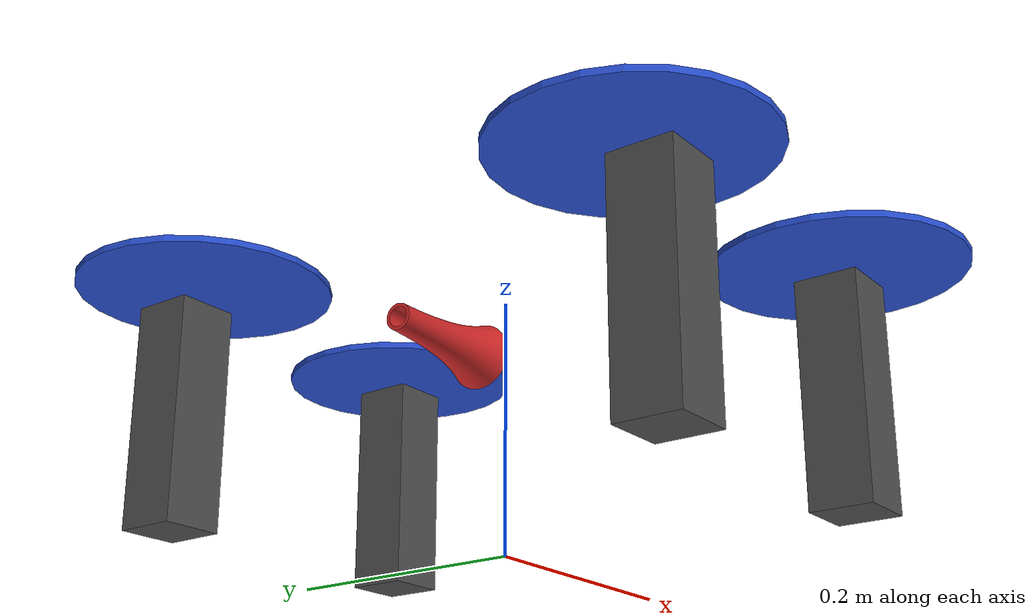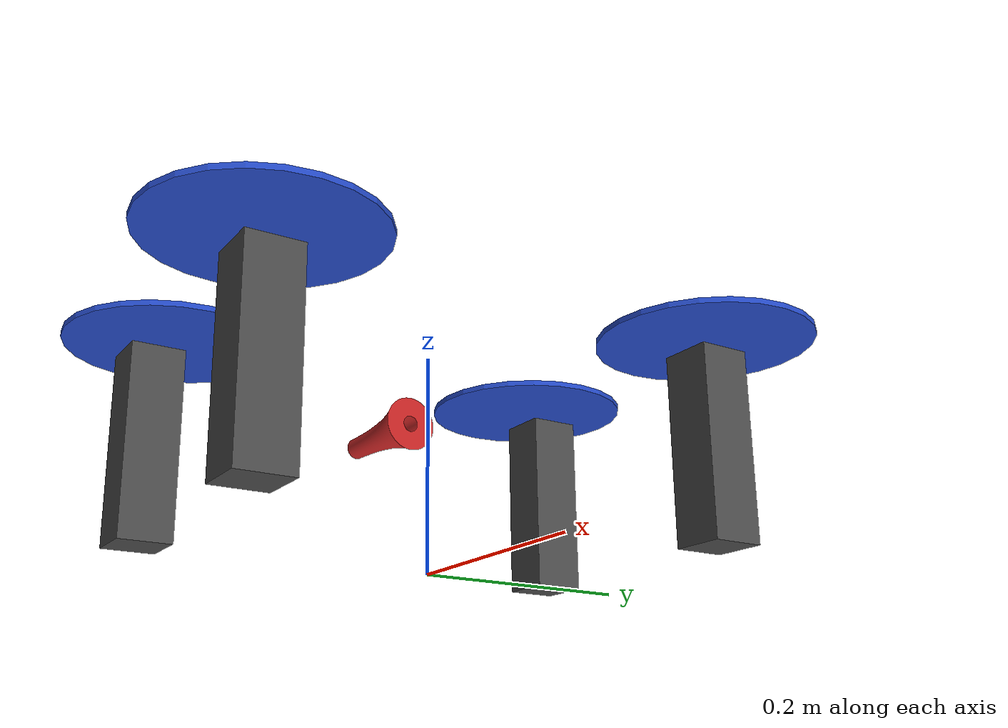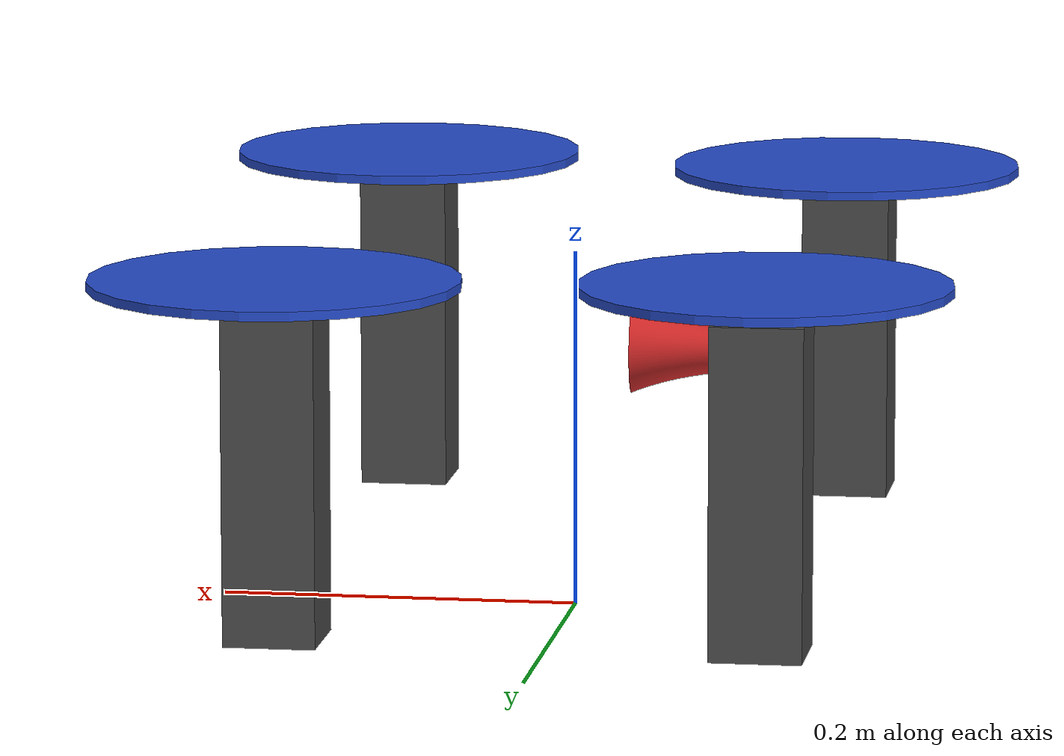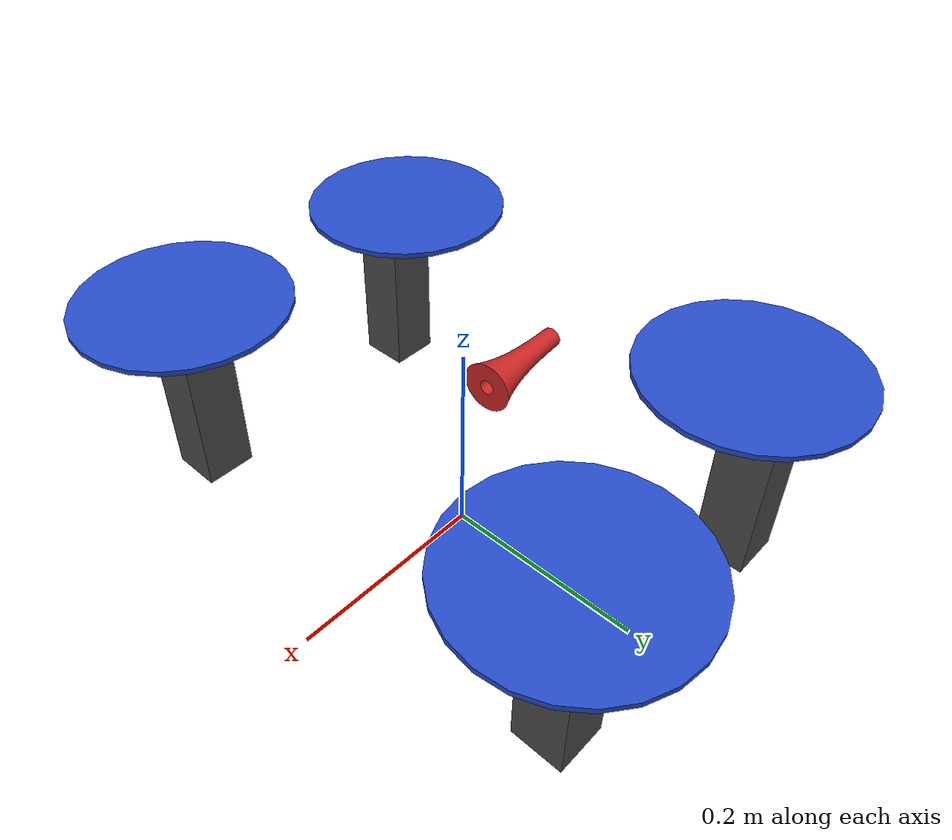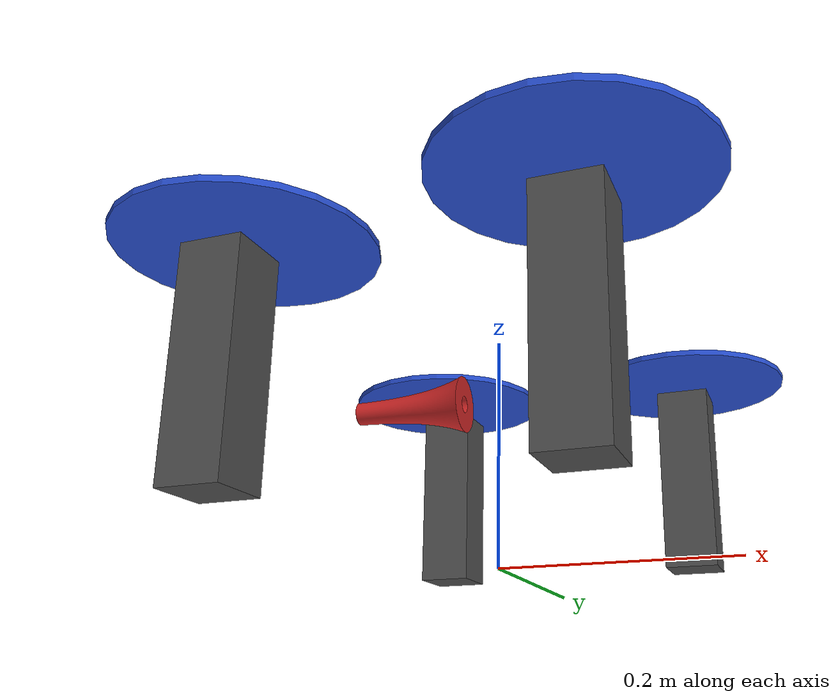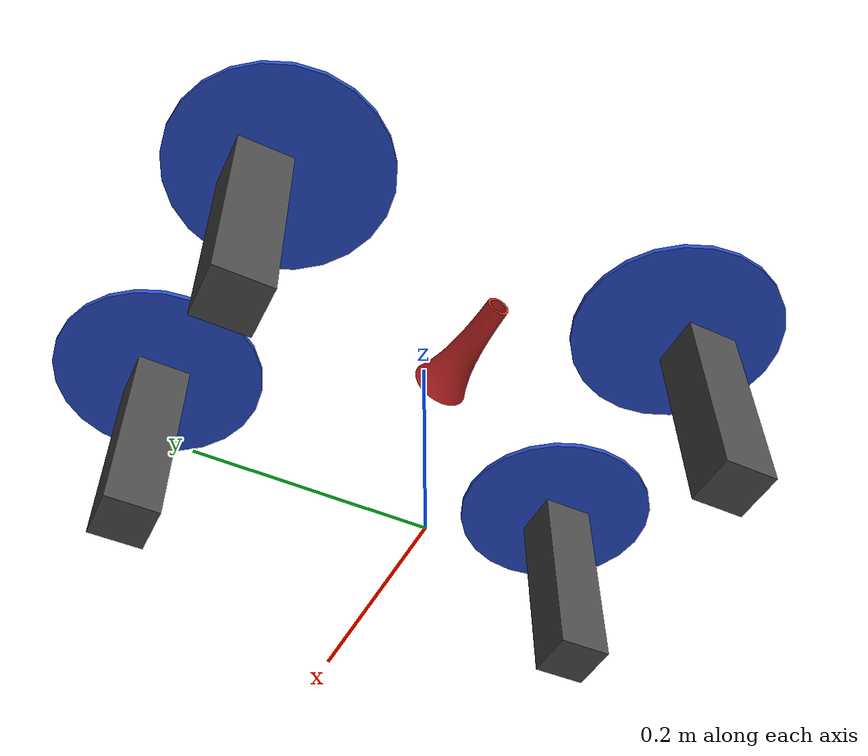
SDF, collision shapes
<?xml version='1.0'?>
<sdf version="1.6" >
  <model name="drone_spray">
    <include>
      <uri>model://iris_base</uri>
    </include>
    <!-- plugins -->

    <link name='link_0'>
      <inertial>
        <mass>0.0001</mass>
        <inertia>
          <ixx>0.0007</ixx>
          <ixy>0</ixy>
          <ixz>0</ixz>
          <iyy>0.0007</iyy>
          <iyz>0</iyz>
          <izz>0.0007</izz>
        </inertia>
        <pose>0 0 0 1.57 -0 0</pose>
      </inertial>
      <pose>-0.031929 -6.1e-05 0.146713 3.14126 -0.006965 1.61906</pose>
      <gravity>1</gravity>
      <self_collide>0</self_collide>
      <kinematic>0</kinematic>
      <enable_wind>0</enable_wind>
      <visual name='visual'>
        <pose>0 0 0.01 1.57 -0 0</pose>
        <geometry>
          <mesh>
            <uri>meshes/nozzle v2.stl</uri>
            <scale>0.001 0.001 0.001</scale>
          </mesh>
        </geometry>
        <material>
          <lighting>1</lighting>
          <script>
            <name>Gazebo/Red</name>
          </script>
        </material>
        <transparency>0</transparency>
        <cast_shadows>1</cast_shadows>
      </visual>
      <collision name='collision'>
        <laser_retro>0</laser_retro>
        <max_contacts>10</max_contacts>
        <pose>0 0 0 1.57 -0 0</pose>
        <geometry>
          <mesh>
            <uri>meshes/nozzle v2.stl</uri>
            <scale>0.001 0.001 0.001</scale>
          </mesh>
        </geometry>
        <surface>
          <friction>
            <ode>
              <mu>1</mu>
              <mu2>1</mu2>
              <fdir1>0 0 0</fdir1>
              <slip1>0</slip1>
              <slip2>0</slip2>
            </ode>
            <torsional>
              <coefficient>1</coefficient>
              <patch_radius>0</patch_radius>
              <surface_radius>0</surface_radius>
              <use_patch_radius>1</use_patch_radius>
              <ode>
                <slip>0</slip>
              </ode>
            </torsional>
          </friction>
          <bounce>
            <restitution_coefficient>0</restitution_coefficient>
            <threshold>1e+06</threshold>
          </bounce>
          <contact>
            <collide_without_contact>0</collide_without_contact>
            <collide_without_contact_bitmask>1</collide_without_contact_bitmask>
            <collide_bitmask>1</collide_bitmask>
            <ode>
              <soft_cfm>0</soft_cfm>
              <soft_erp>0.2</soft_erp>
              <kp>1e+13</kp>
              <kd>1</kd>
              <max_vel>0.01</max_vel>
              <min_depth>0</min_depth>
            </ode>
            <bullet>
              <split_impulse>1</split_impulse>
              <split_impulse_penetration_threshold>-0.01</split_impulse_penetration_threshold>
              <soft_cfm>0</soft_cfm>
              <soft_erp>0.2</soft_erp>
              <kp>1e+13</kp>
              <kd>1</kd>
            </bullet>
          </contact>
        </surface>
      </collision>
    </link>
    <joint name='base_link_joint_0' type='revolute'>
      <parent>iris::base_link</parent>
      <child>link_0</child>
      <axis>
        <xyz>0 0 1</xyz>
        <limit>
          <lower>0.0</lower>
          <upper>0.0</upper>
        </limit>
        <dynamics>
          <damping>1.0</damping>
        </dynamics>
        <use_parent_model_frame>1</use_parent_model_frame>
      </axis>
      <physics>
        <ode>
          <implicit_spring_damper>1</implicit_spring_damper>
        </ode>
      </physics>
    </joint>

    <plugin name="rotor_0_blade_1" filename="libLiftDragPlugin.so">
      <a0>0.3</a0>
      <alpha_stall>1.4</alpha_stall>
      <cla>4.2500</cla>
      <cda>0.10</cda>
      <cma>0.00</cma>
      <cla_stall>-0.025</cla_stall>
      <cda_stall>0.0</cda_stall>
      <cma_stall>0.0</cma_stall>
      <area>0.002</area>
      <air_density>1.2041</air_density>
      <cp>0.084 0 0</cp>
      <forward>0 1 0</forward>
      <upward>0 0 1</upward>
      <link_name>iris::rotor_0</link_name>
    </plugin>
    <plugin name="rotor_0_blade_2" filename="libLiftDragPlugin.so">
      <a0>0.3</a0>
      <alpha_stall>1.4</alpha_stall>
      <cla>4.2500</cla>
      <cda>0.10</cda>
      <cma>0.00</cma>
      <cla_stall>-0.025</cla_stall>
      <cda_stall>0.0</cda_stall>
      <cma_stall>0.0</cma_stall>
      <area>0.002</area>
      <air_density>1.2041</air_density>
      <cp>-0.084 0 0</cp>
      <forward>0 -1 0</forward>
      <upward>0 0 1</upward>
      <link_name>iris::rotor_0</link_name>
    </plugin>

    <plugin name="rotor_1_blade_1" filename="libLiftDragPlugin.so">
      <a0>0.3</a0>
      <alpha_stall>1.4</alpha_stall>
      <cla>4.2500</cla>
      <cda>0.10</cda>
      <cma>0.00</cma>
      <cla_stall>-0.025</cla_stall>
      <cda_stall>0.0</cda_stall>
      <cma_stall>0.0</cma_stall>
      <area>0.002</area>
      <air_density>1.2041</air_density>
      <cp>0.084 0 0</cp>
      <forward>0 1 0</forward>
      <upward>0 0 1</upward>
      <link_name>iris::rotor_1</link_name>
    </plugin>
    <plugin name="rotor_1_blade_2" filename="libLiftDragPlugin.so">
      <a0>0.3</a0>
      <alpha_stall>1.4</alpha_stall>
      <cla>4.2500</cla>
      <cda>0.10</cda>
      <cma>0.00</cma>
      <cla_stall>-0.025</cla_stall>
      <cda_stall>0.0</cda_stall>
      <cma_stall>0.0</cma_stall>
      <area>0.002</area>
      <air_density>1.2041</air_density>
      <cp>-0.084 0 0</cp>
      <forward>0 -1 0</forward>
      <upward>0 0 1</upward>
      <link_name>iris::rotor_1</link_name>
    </plugin>

    <plugin name="rotor_2_blade_1" filename="libLiftDragPlugin.so">
      <a0>0.3</a0>
      <alpha_stall>1.4</alpha_stall>
      <cla>4.2500</cla>
      <cda>0.10</cda>
      <cma>0.00</cma>
      <cla_stall>-0.025</cla_stall>
      <cda_stall>0.0</cda_stall>
      <cma_stall>0.0</cma_stall>
      <area>0.002</area>
      <air_density>1.2041</air_density>
      <cp>0.084 0 0</cp>
      <forward>0 -1 0</forward>
      <upward>0 0 1</upward>
      <link_name>iris::rotor_2</link_name>
    </plugin>
    <plugin name="rotor_2_blade_2" filename="libLiftDragPlugin.so">
      <a0>0.3</a0>
      <alpha_stall>1.4</alpha_stall>
      <cla>4.2500</cla>
      <cda>0.10</cda>
      <cma>0.00</cma>
      <cla_stall>-0.025</cla_stall>
      <cda_stall>0.0</cda_stall>
      <cma_stall>0.0</cma_stall>
      <area>0.002</area>
      <air_density>1.2041</air_density>
      <cp>-0.084 0 0</cp>
      <forward>0 1 0</forward>
      <upward>0 0 1</upward>
      <link_name>iris::rotor_2</link_name>
    </plugin>

    <plugin name="rotor_3_blade_1" filename="libLiftDragPlugin.so">
      <a0>0.3</a0>
      <alpha_stall>1.4</alpha_stall>
      <cla>4.2500</cla>
      <cda>0.10</cda>
      <cma>0.00</cma>
      <cla_stall>-0.025</cla_stall>
      <cda_stall>0.0</cda_stall>
      <cma_stall>0.0</cma_stall>
      <area>0.002</area>
      <air_density>1.2041</air_density>
      <cp>0.084 0 0</cp>
      <forward>0 -1 0</forward>
      <upward>0 0 1</upward>
      <link_name>iris::rotor_3</link_name>
    </plugin>
    <plugin name="rotor_3_blade_2" filename="libLiftDragPlugin.so">
      <a0>0.3</a0>
      <alpha_stall>1.4</alpha_stall>
      <cla>4.2500</cla>
      <cda>0.10</cda>
      <cma>0.00</cma>
      <cla_stall>-0.025</cla_stall>
      <cda_stall>0.0</cda_stall>
      <cma_stall>0.0</cma_stall>
      <area>0.002</area>
      <air_density>1.2041</air_density>
      <cp>-0.084 0 0</cp>
      <forward>0 1 0</forward>
      <upward>0 0 1</upward>
      <link_name>iris::rotor_3</link_name>
    </plugin>
    <plugin name="arducopter_plugin" filename="libArduPilotPlugin.so">
      <fdm_addr>127.0.0.1</fdm_addr>
      <fdm_port_in>9002</fdm_port_in>
      <fdm_port_out>9003</fdm_port_out>
      <!--
          Require by APM :
          Only change model and gazebo from XYZ to XY-Z coordinates
      -->
      <modelXYZToAirplaneXForwardZDown>0 0 0 3.141593 0 0</modelXYZToAirplaneXForwardZDown>
      <gazeboXYZToNED>0 0 0 3.141593 0 0</gazeboXYZToNED>
      <imuName>iris::iris/imu_link::imu_sensor</imuName>
      <connectionTimeoutMaxCount>5</connectionTimeoutMaxCount>
      <control channel="0">
      <!--
          incoming control command [0, 1]
          so offset it by 0 to get [0, 1]
          and divide max target by 1.
          offset = 0
          multiplier = 838 max rpm / 1 = 838
        -->
        <type>VELOCITY</type>
        <offset>0</offset>
        <p_gain>0.20</p_gain>
        <i_gain>0</i_gain>
        <d_gain>0</d_gain>
        <i_max>0</i_max>
        <i_min>0</i_min>
        <cmd_max>2.5</cmd_max>
        <cmd_min>-2.5</cmd_min>
        <jointName>iris::rotor_0_joint</jointName>
        <multiplier>838</multiplier>
        <controlVelocitySlowdownSim>1</controlVelocitySlowdownSim>
      </control>
      <control channel="1">
        <type>VELOCITY</type>
        <offset>0</offset>
        <p_gain>0.20</p_gain>
        <i_gain>0</i_gain>
        <d_gain>0</d_gain>
        <i_max>0</i_max>
        <i_min>0</i_min>
        <cmd_max>2.5</cmd_max>
        <cmd_min>-2.5</cmd_min>
        <jointName>iris::rotor_1_joint</jointName>
        <multiplier>838</multiplier>
        <controlVelocitySlowdownSim>1</controlVelocitySlowdownSim>
      </control>
      <control channel="2">
        <type>VELOCITY</type>
        <offset>0</offset>
        <p_gain>0.20</p_gain>
        <i_gain>0</i_gain>
        <d_gain>0</d_gain>
        <i_max>0</i_max>
        <i_min>0</i_min>
        <cmd_max>2.5</cmd_max>
        <cmd_min>-2.5</cmd_min>
        <jointName>iris::rotor_2_joint</jointName>
        <multiplier>-838</multiplier>
        <controlVelocitySlowdownSim>1</controlVelocitySlowdownSim>
      </control>
      <control channel="3">
        <type>VELOCITY</type>
        <offset>0</offset>
        <p_gain>0.20</p_gain>
        <i_gain>0</i_gain>
        <d_gain>0</d_gain>
        <i_max>0</i_max>
        <i_min>0</i_min>
        <cmd_max>2.5</cmd_max>
        <cmd_min>-2.5</cmd_min>
        <jointName>iris::rotor_3_joint</jointName>
        <multiplier>-838</multiplier>
        <controlVelocitySlowdownSim>1</controlVelocitySlowdownSim>
      </control>
    </plugin>

  </model>
</sdf>

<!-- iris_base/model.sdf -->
<sdf version='1.6'>
  <model name='iris'>
    <pose>0 0 0.194923 0 0 0</pose>
    <link name='base_link'>
      <velocity_decay>
        <linear>0.0</linear>
        <angular>0.0</angular>
      </velocity_decay>
      <inertial>
        <pose>0 0 0 0 0 0</pose>
        <mass>1.5</mass>
        <inertia>
          <ixx>0.008</ixx>
          <ixy>0</ixy>
          <ixz>0</ixz>
          <iyy>0.015</iyy>
          <iyz>0</iyz>
          <izz>0.017</izz>
        </inertia>
      </inertial>
      <collision name='base_link_collision_fl'>
        <pose>0.13 0.22 -0.08 0 0 0</pose>
        <geometry>
          <box>
            <size>0.05 0.05 0.18</size>
          </box>
        </geometry>
        <surface>
          <contact>
            <ode>
              <max_vel>100.0</max_vel>
              <min_depth>0.001</min_depth>
            </ode>
          </contact>
          <friction>
            <ode>
              <mu>1.0</mu>
              <mu2>1.0</mu2>
            </ode>
          </friction>
        </surface>
      </collision>
      <collision name='base_link_collision_fr'>
        <pose>0.13 -0.22 -0.08 0 0 0</pose>
        <geometry>
          <box>
            <size>0.05 0.05 0.18</size>
          </box>
        </geometry>
        <surface>
          <contact>
            <ode>
              <max_vel>100.0</max_vel>
              <min_depth>0.001</min_depth>
            </ode>
          </contact>
          <friction>
            <ode>
              <mu>1.0</mu>
              <mu2>1.0</mu2>
            </ode>
          </friction>
        </surface>
      </collision>
      <collision name='base_link_collision_br'>
        <pose>-0.13 -0.22 -0.08 0 0 0</pose>
        <geometry>
          <box>
            <size>0.05 0.05 0.18</size>
          </box>
        </geometry>
        <surface>
          <contact>
            <ode>
              <max_vel>100.0</max_vel>
              <min_depth>0.001</min_depth>
            </ode>
          </contact>
          <friction>
            <ode>
              <mu>1.0</mu>
              <mu2>1.0</mu2>
            </ode>
          </friction>
        </surface>
      </collision>
      <collision name='base_link_collision_bl'>
        <pose>-0.13 0.22 -0.08 0 0 0</pose>
        <geometry>
          <box>
            <size>0.05 0.05 0.18</size>
          </box>
        </geometry>
        <surface>
          <contact>
            <ode>
              <max_vel>100.0</max_vel>
              <min_depth>0.001</min_depth>
            </ode>
          </contact>
          <friction>
            <ode>
              <mu>1.0</mu>
              <mu2>1.0</mu2>
            </ode>
          </friction>
        </surface>
      </collision>
      <visual name='base_link_visual'>
        <geometry>
          <mesh>
            <uri>model://iris_base/meshes/iris.dae</uri>
          </mesh>
        </geometry>
        <material>
          <script>
            <name>Gazebo/DarkGrey</name>
          </script>
        </material>
      </visual>

      <visual name='front_left_leg_visual'>
        <pose>0.123 0.22 -0.11 0 0 0</pose>
        <geometry>
          <cylinder>
            <radius>0.005</radius>
            <length>0.17</length>
          </cylinder>
        </geometry>
        <material>
          <script>
            <name>Gazebo/FlatBlack</name>
            <uri>file://media/materials/scripts/gazebo.material</uri>
          </script>
        </material>
      </visual>
      <visual name='front_right_leg_visual'>
        <pose>0.123 -0.22 -0.11 0 0 0</pose>
        <geometry>
          <cylinder>
            <radius>0.005</radius>
            <length>0.17</length>
          </cylinder>
        </geometry>
        <material>
          <script>
            <name>Gazebo/FlatBlack</name>
            <uri>file://media/materials/scripts/gazebo.material</uri>
          </script>
        </material>
      </visual>
      <visual name='rear_left_leg_visual'>
        <pose>-0.140 0.21 -0.11 0 0 0</pose>
        <geometry>
          <cylinder>
            <radius>0.005</radius>
            <length>0.17</length>
          </cylinder>
        </geometry>
        <material>
          <script>
            <name>Gazebo/FlatBlack</name>
            <uri>file://media/materials/scripts/gazebo.material</uri>
          </script>
        </material>
      </visual>
      <visual name='rear_right_leg_visual'>
        <pose>-0.140 -0.21 -0.11 0 0 0</pose>
        <geometry>
          <cylinder>
            <radius>0.005</radius>
            <length>0.17</length>
          </cylinder>
        </geometry>
        <material>
          <script>
            <name>Gazebo/FlatBlack</name>
            <uri>file://media/materials/scripts/gazebo.material</uri>
          </script>
        </material>
      </visual>
    </link>
    <link name='iris/ground_truth/odometry_sensorgt_link'>
      <pose>0 0 0 0 -0 0</pose>
      <inertial>
        <pose>0 0 0 0 -0 0</pose>
        <mass>0.15</mass>
        <inertia>
          <ixx>0.0001</ixx>
          <ixy>0</ixy>
          <ixz>0</ixz>
          <iyy>0.0002</iyy>
          <iyz>0</iyz>
          <izz>0.0002</izz>
        </inertia>
      </inertial>
    </link>
    <joint name='iris/ground_truth/odometry_sensorgt_joint' type='revolute'>
      <child>iris/ground_truth/odometry_sensorgt_link</child>
      <parent>base_link</parent>
      <axis>
        <xyz>0 0 1</xyz>
        <limit>
          <lower>0</lower>
          <upper>0</upper>
          <effort>0</effort>
          <velocity>0</velocity>
        </limit>
        <dynamics>
          <damping>1.0</damping>
        </dynamics>
        <use_parent_model_frame>1</use_parent_model_frame>
      </axis>
      <physics>
        <ode>
          <implicit_spring_damper>1</implicit_spring_damper>
        </ode>
      </physics>
    </joint>
    <link name='iris/imu_link'>
      <inertial>
        <pose>0 0 0 0 0 0</pose>
        <mass>0.15</mass>
        <inertia>
          <ixx>0.00001</ixx>
          <ixy>0</ixy>
          <ixz>0</ixz>
          <iyy>0.00002</iyy>
          <iyz>0</iyz>
          <izz>0.00002</izz>
        </inertia>
      </inertial>
      <sensor name="imu_sensor" type="imu">
        <pose>0 0 0 3.141593 0 0</pose>
        <always_on>1</always_on>
        <update_rate>1000.0</update_rate>
      </sensor>
    </link>
    <joint name='iris/imu_joint' type='revolute'>
      <child>iris/imu_link</child>
      <parent>base_link</parent>
      <axis>
        <xyz>0 0 1</xyz>
        <limit>
          <lower>0</lower>
          <upper>0</upper>
          <effort>0</effort>
          <velocity>0</velocity>
        </limit>
        <dynamics>
          <damping>1.0</damping>
        </dynamics>
        <use_parent_model_frame>1</use_parent_model_frame>
      </axis>
      <physics>
        <ode>
          <implicit_spring_damper>1</implicit_spring_damper>
        </ode>
      </physics>
    </joint>
    <link name='rotor_0'>
      <pose>0.13 -0.22 0.023 0 -0 0</pose>
      <inertial>
        <pose>0 0 0 0 -0 0</pose>
        <mass>0.025</mass>
        <inertia>
          <ixx>9.75e-06</ixx>
          <ixy>0</ixy>
          <ixz>0</ixz>
          <iyy>0.000166704</iyy>
          <iyz>0</iyz>
          <izz>0.000167604</izz>
        </inertia>
      </inertial>
      <collision name='rotor_0_collision'>
        <pose>0 0 0 0 -0 0</pose>
        <geometry>
          <cylinder>
            <length>0.005</length>
            <radius>0.1</radius>
          </cylinder>
        </geometry>
        <surface>
          <contact>
            <ode/>
          </contact>
          <friction>
            <ode/>
          </friction>
        </surface>
      </collision>
      <visual name='rotor_0_visual'>
        <pose>0 0 0 0 -0 0</pose>
        <geometry>
          <mesh>
            <scale>1 1 1</scale>
            <uri>model://iris_base/meshes/iris_prop_ccw.dae</uri>
          </mesh>
        </geometry>
        <material>
          <script>
            <name>Gazebo/Blue</name>
            <uri>__default__</uri>
          </script>
        </material>
      </visual>
      <gravity>1</gravity>
      <velocity_decay/>
      <self_collide>0</self_collide>
    </link>
    <joint name='rotor_0_joint' type='revolute'>
      <child>rotor_0</child>
      <parent>base_link</parent>
      <axis>
        <xyz>0 0 1</xyz>
        <limit>
          <lower>-1e+16</lower>
          <upper>1e+16</upper>
        </limit>
        <dynamics>
          <damping>0.004</damping>
        </dynamics>
        <use_parent_model_frame>1</use_parent_model_frame>
      </axis>
      <physics>
        <ode>
          <implicit_spring_damper>1</implicit_spring_damper>
        </ode>
      </physics>
    </joint>
    <link name='rotor_1'>
      <pose>-0.13 0.2 0.023 0 -0 0</pose>
      <inertial>
        <pose>0 0 0 0 -0 0</pose>
        <mass>0.025</mass>
        <inertia>
          <ixx>9.75e-06</ixx>
          <ixy>0</ixy>
          <ixz>0</ixz>
          <iyy>0.000166704</iyy>
          <iyz>0</iyz>
          <izz>0.000167604</izz>
        </inertia>
      </inertial>
      <collision name='rotor_1_collision'>
        <pose>0 0 0 0 -0 0</pose>
        <geometry>
          <cylinder>
            <length>0.005</length>
            <radius>0.1</radius>
          </cylinder>
        </geometry>
        <surface>
          <contact>
            <ode/>
          </contact>
          <friction>
            <ode/>
          </friction>
        </surface>
      </collision>
      <visual name='rotor_1_visual'>
        <pose>0 0 0 0 -0 0</pose>
        <geometry>
          <mesh>
            <scale>1 1 1</scale>
            <uri>model://iris_base/meshes/iris_prop_ccw.dae</uri>
          </mesh>
        </geometry>
        <material>
          <script>
            <name>Gazebo/Blue</name>
            <uri>__default__</uri>
          </script>
        </material>
      </visual>
      <gravity>1</gravity>
      <velocity_decay/>
      <self_collide>0</self_collide>
    </link>
    <joint name='rotor_1_joint' type='revolute'>
      <child>rotor_1</child>
      <parent>base_link</parent>
      <axis>
        <xyz>0 0 1</xyz>
        <limit>
          <lower>-1e+16</lower>
          <upper>1e+16</upper>
        </limit>
        <dynamics>
          <damping>0.004</damping>
        </dynamics>
        <use_parent_model_frame>1</use_parent_model_frame>
      </axis>
      <physics>
        <ode>
          <implicit_spring_damper>1</implicit_spring_damper>
        </ode>
      </physics>
    </joint>
    <link name='rotor_2'>
      <pose>0.13 0.22 0.023 0 -0 0</pose>
      <inertial>
        <pose>0 0 0 0 -0 0</pose>
        <mass>0.025</mass>
        <inertia>
          <ixx>9.75e-06</ixx>
          <ixy>0</ixy>
          <ixz>0</ixz>
          <iyy>0.000166704</iyy>
          <iyz>0</iyz>
          <izz>0.000167604</izz>
        </inertia>
      </inertial>
      <collision name='rotor_2_collision'>
        <pose>0 0 0 0 -0 0</pose>
        <geometry>
          <cylinder>
            <length>0.005</length>
            <radius>0.1</radius>
          </cylinder>
        </geometry>
        <surface>
          <contact>
            <ode/>
          </contact>
          <friction>
            <ode/>
          </friction>
        </surface>
      </collision>
      <visual name='rotor_2_visual'>
        <pose>0 0 0 0 -0 0</pose>
        <geometry>
          <mesh>
            <scale>1 1 1</scale>
            <uri>model://iris_base/meshes/iris_prop_cw.dae</uri>
          </mesh>
        </geometry>
        <material>
          <script>
            <name>Gazebo/Blue</name>
            <uri>__default__</uri>
          </script>
        </material>
      </visual>
      <gravity>1</gravity>
      <velocity_decay/>
      <self_collide>0</self_collide>
    </link>
    <joint name='rotor_2_joint' type='revolute'>
      <child>rotor_2</child>
      <parent>base_link</parent>
      <axis>
        <xyz>0 0 1</xyz>
        <limit>
          <lower>-1e+16</lower>
          <upper>1e+16</upper>
        </limit>
        <dynamics>
          <damping>0.004</damping>
        </dynamics>
        <use_parent_model_frame>1</use_parent_model_frame>
      </axis>
      <physics>
        <ode>
          <implicit_spring_damper>1</implicit_spring_damper>
        </ode>
      </physics>
    </joint>
    <link name='rotor_3'>
      <pose>-0.13 -0.2 0.023 0 -0 0</pose>
      <inertial>
        <pose>0 0 0 0 -0 0</pose>
        <mass>0.025</mass>
        <inertia>
          <ixx>9.75e-06</ixx>
          <ixy>0</ixy>
          <ixz>0</ixz>
          <iyy>0.000166704</iyy>
          <iyz>0</iyz>
          <izz>0.000167604</izz>
        </inertia>
      </inertial>
      <collision name='rotor_3_collision'>
        <pose>0 0 0 0 -0 0</pose>
        <geometry>
          <cylinder>
            <length>0.005</length>
            <radius>0.1</radius>
          </cylinder>
        </geometry>
        <surface>
          <contact>
            <ode/>
          </contact>
          <friction>
            <ode/>
          </friction>
        </surface>
      </collision>
      <visual name='rotor_3_visual'>
        <pose>0 0 0 0 -0 0</pose>
        <geometry>
          <mesh>
            <scale>1 1 1</scale>
            <uri>model://iris_base/meshes/iris_prop_cw.dae</uri>
          </mesh>
        </geometry>
        <material>
          <script>
            <name>Gazebo/Blue</name>
            <uri>__default__</uri>
          </script>
        </material>
      </visual>
      <gravity>1</gravity>
      <velocity_decay/>
      <self_collide>0</self_collide>
    </link>
    <joint name='rotor_3_joint' type='revolute'>
      <child>rotor_3</child>
      <parent>base_link</parent>
      <axis>
        <xyz>0 0 1</xyz>
        <limit>
          <lower>-1e+16</lower>
          <upper>1e+16</upper>
        </limit>
        <dynamics>
          <damping>0.004</damping>
        </dynamics>
        <use_parent_model_frame>1</use_parent_model_frame>
      </axis>
      <physics>
        <ode>
          <implicit_spring_damper>1</implicit_spring_damper>
        </ode>
      </physics>
    </joint>
    <static>0</static>
  </model>
</sdf>
